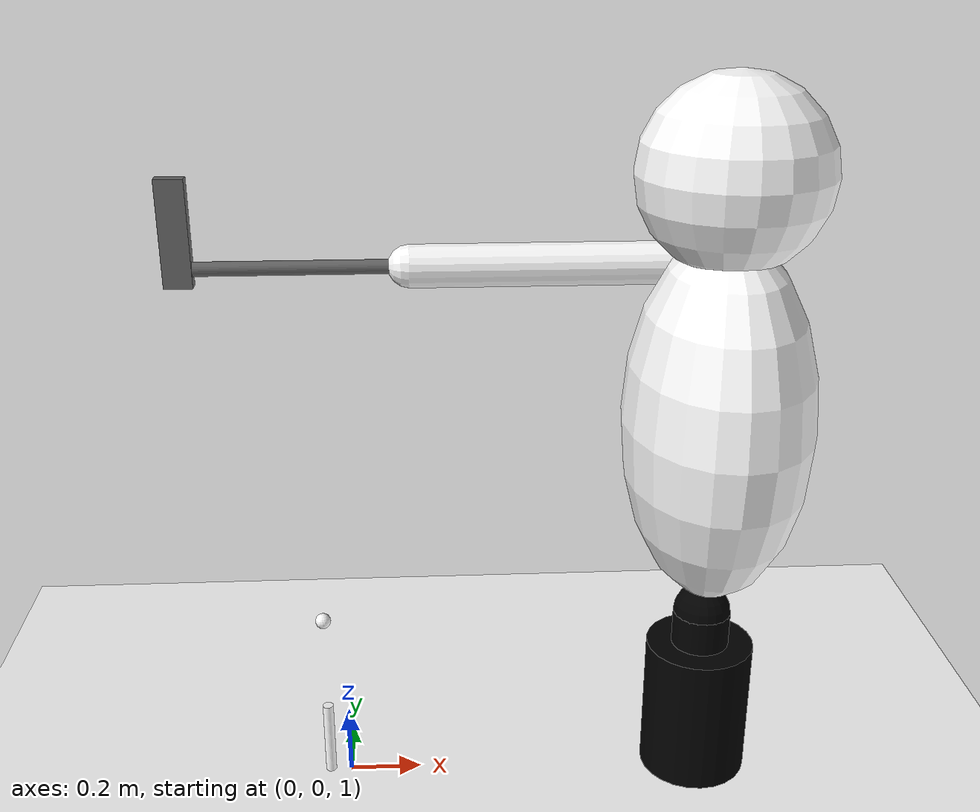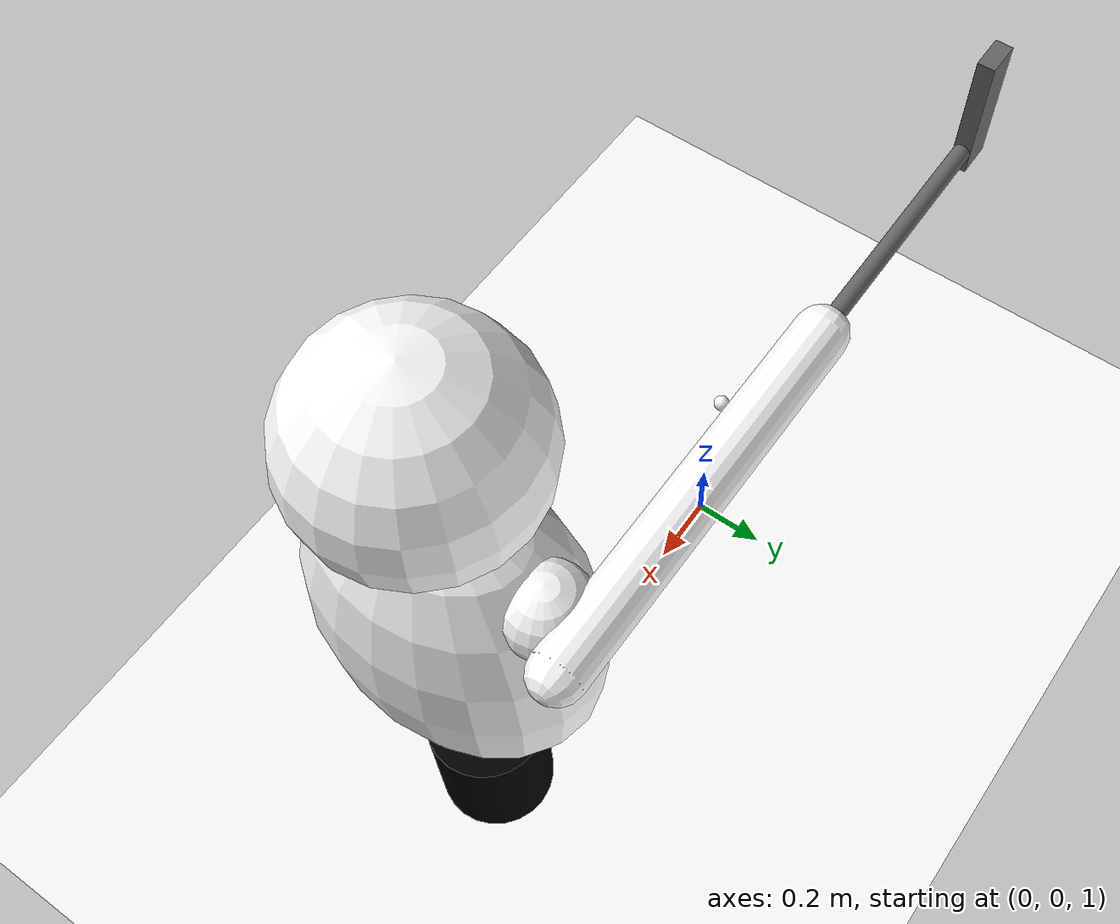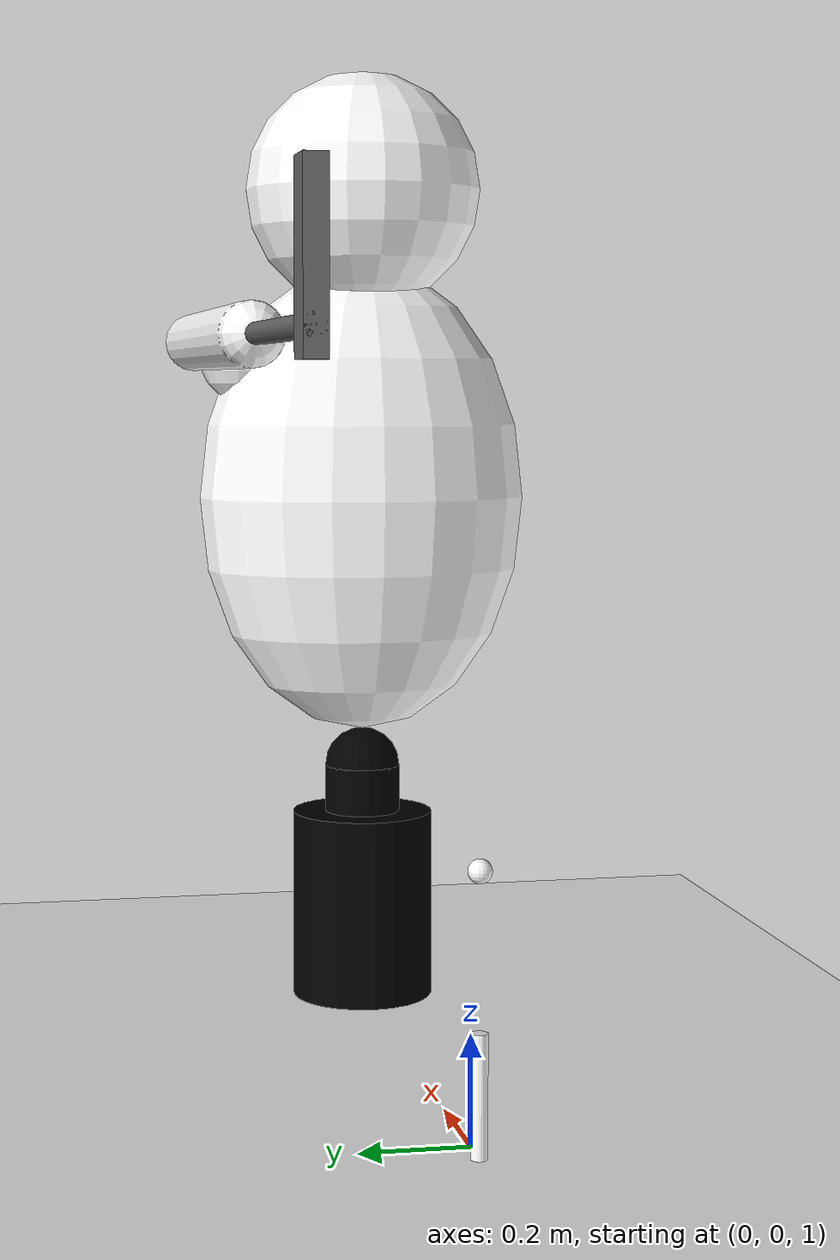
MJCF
<mujoco>
    <worldbody>
		<light diffuse="1 1 1" pos="0 0 5" dir="0 0 -1"/>

		<geom type="plane" size="3 10 0.1" rgba="1 1 1 1" pos="0 -8 1"/>

        <!-- Golf player -->
		<body pos="1 0 1.2">

			<!-- Non-moving base -->
			<geom name="base" type="cylinder" size="0.15 0.2" rgba="0 0 0 1"/>

			<body pos="0 0 0.2">

				<!-- Small cylinder stand thing -->
				<geom name="stand" type="cylinder" size="0.08 0.1" rgba="0 0 0 1"/>

				<body pos="0 0 0.1">

					<!-- Ball for the joint -->
					<geom name="ball" type="sphere" size="0.08" rgba="0 0 0 1"/>

					<body pos="0 0 0.58"> <!-- Ball radius + half height of torso -->

						<!-- Torso -->
						<geom name="torso" type="ellipsoid" size="0.25 0.35 0.5" rgba="1 1 1 1"/>
						<inertial pos="-0.5 0 0" mass="10" diaginertia="0.1 0.1 0.1"/>

						<joint name="torso_fold" pos="0 0 -0.5" axis="0 1 0" type="hinge"/>
						<joint name="torso_rotate" pos="0 0 -0.5" axis="0 0 1" type="hinge"/>

                        <body pos="0 0.25 0.3">
							<geom name="shoulder1" type="sphere" size="0.1" rgba="1 1 1 1"/>

							<body pos="-0.35 0.1 0.03" euler="90 90 0">
								<geom name="arm1" type="capsule" size="0.06 0.45" rgba="1 1 1 1"/>
                                <joint name="arm1" pos="0 0 0.35" axis="1 0 0" type="hinge"/>

                                <!-- Club -->
                                <body pos="0 0 -0.55" euler="0 0 -90">
                                    <geom name="club" type="cylinder" size="0.02 0.57" mass="1" rgba="0.4 0.4 0.4 1"/>

                                    <body>
                                        <geom name="hammer" mass="1"  type="box" size="0.04 0.02 0.15" rgba="0.4 0.4 0.4 1" euler="0 90 0" pos="-0.1  0 -0.53"/>
                                    </body>
                                </body>
							</body>
						</body>

						<!-- Head -->
						<body pos="0 0 0.65">
							<geom name="head" type="sphere" size="0.25"  rgba="1 1 1 1"/>
						</body>
					</body>
				</body>
			</body>
		</body>

        <!-- Position mega hardcoded  -->
        <body pos="-0.06 0 1.11">
		    <geom name="cylthing" type="cylinder" size="0.015 0.11" rgba="1 1 1 1"/>
		</body>
        <body pos="-0.06 0 1.5">
		    <joint type="free"/>
		    <geom name="golf_ball" type="sphere" mass="0.04593" size="0.02134" rgba="1 1 1 1"/>
		</body>
	</worldbody>

    <actuator>
        <position name="fold_motor" joint="torso_fold" kp="10000" dampratio="1"/>
        <position name="rotate_motor" joint="torso_rotate" kp="10000" dampratio="1"/>
        <position name="arm1_motor" joint="arm1" kp="10000" dampratio="1"/>
    </actuator>
</mujoco>
